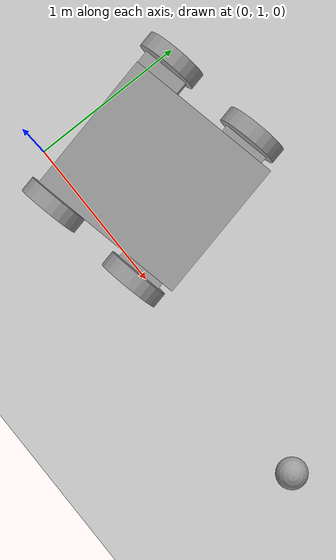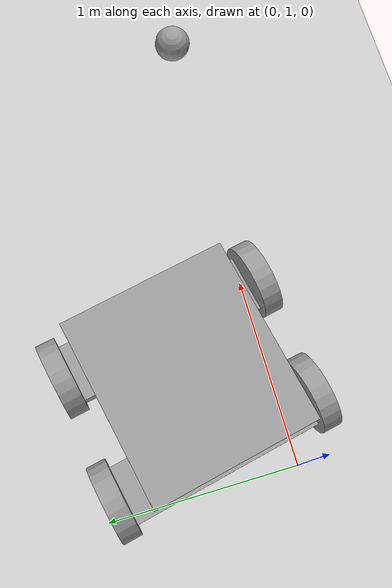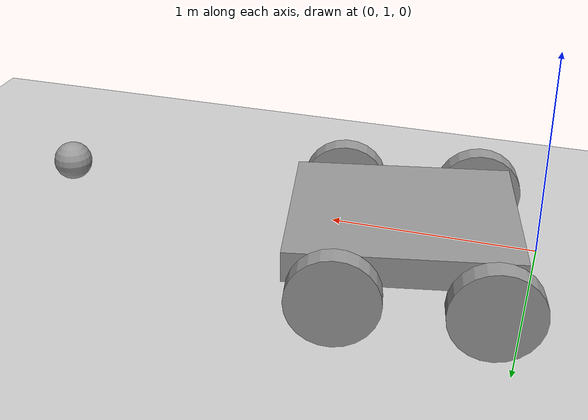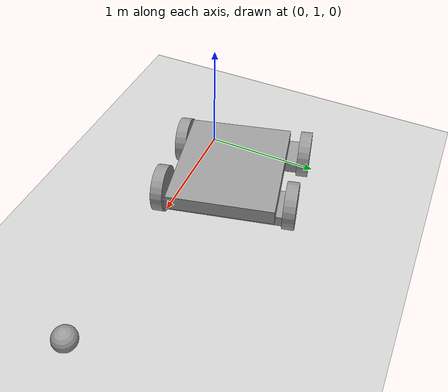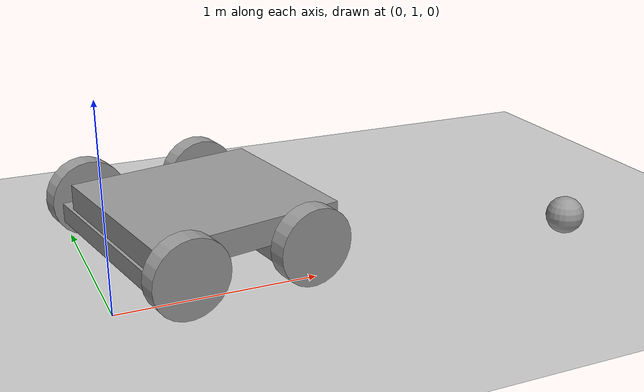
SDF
<sdf version="1.6">
 <world name="default">
  <model name="ground_plane">
   <static>1</static>
   <link name="link">
    <collision name="collision">
     <geometry><plane><normal>0 0 1</normal><size>100 100</size></plane></geometry>
     <surface><friction><ode><mu>100</mu><mu2>50</mu2></ode></friction></surface>
    </collision>
    <visual name="visual">
     <cast_shadows>0</cast_shadows>
     <geometry><plane><normal>0 0 1</normal><size>100 100</size></plane></geometry>
     <material>
      <script><uri>file://media/materials/scripts/gazebo.material</uri><name>Gazebo/Grey</name></script>
     </material>
    </visual>
   </link>
  </model>
  <model name="car2_0">
   <link name="link_0">
    <pose>-0.029646 0.017279 0.209143 0 -0 0</pose>
    <inertial>
     <mass>0.122646</mass>
     <inertia>
      <ixx>0.00845846</ixx>
      <ixy>0</ixy>
      <ixz>0</ixz>
      <iyy>0.0104105</iyy>
      <iyz>0</iyz>
      <izz>0.0184889</izz>
     </inertia>
    </inertial>
    <visual name="visual">
     <geometry><box><size>1 0.899449 0.136358</size></box></geometry>
     <material>
      <lighting>1</lighting>
      <script><uri>file://media/materials/scripts/gazebo.material</uri><name>Gazebo/Grey</name></script>
      <shader type="pixel"/>
      <ambient>0.3 0.3 0.3 1</ambient>
      <diffuse>0.7 0.7 0.7 1</diffuse>
      <specular>0.01 0.01 0.01 1</specular>
      <emissive>0 0 0 1</emissive>
     </material>
    </visual>
    <collision name="collision">
     <geometry><box><size>1 0.899449 0.136358</size></box></geometry>
     <surface>
      <friction>
       <ode><mu>1</mu><mu2>1</mu2><fdir1>0 0 0</fdir1><slip1>0</slip1><slip2>0</slip2></ode>
       <torsional>
        <coefficient>1</coefficient>
        <patch_radius>0</patch_radius>
        <surface_radius>0</surface_radius>
        <use_patch_radius>1</use_patch_radius>
        <ode><slip>0</slip></ode>
       </torsional>
      </friction>
      <bounce><restitution_coefficient>0</restitution_coefficient><threshold>1e+06</threshold></bounce>
      <contact>
       <collide_without_contact>0</collide_without_contact>
       <collide_without_contact_bitmask>1</collide_without_contact_bitmask>
       <collide_bitmask>1</collide_bitmask>
       <ode>
        <soft_cfm>0</soft_cfm>
        <soft_erp>0.2</soft_erp>
        <kp>1e+13</kp>
        <kd>1</kd>
        <max_vel>0.01</max_vel>
        <min_depth>0</min_depth>
       </ode>
       <bullet>
        <split_impulse>1</split_impulse>
        <split_impulse_penetration_threshold>-0.01</split_impulse_penetration_threshold>
        <soft_cfm>0</soft_cfm>
        <soft_erp>0.2</soft_erp>
        <kp>1e+13</kp>
        <kd>1</kd>
       </bullet>
      </contact>
     </surface>
    </collision>
   </link>
   <model name="robot">
    <link name="link_0">
     <pose>0 0 0.2 0 -0 0</pose>
     <inertial>
      <mass>1</mass>
      <inertia>
       <ixx>0.166667</ixx>
       <ixy>0</ixy>
       <ixz>0</ixz>
       <iyy>0.166667</iyy>
       <iyz>0</iyz>
       <izz>0.166667</izz>
      </inertia>
     </inertial>
     <visual name="visual">
      <geometry><box><size>0.3 1 0.1</size></box></geometry>
      <material>
       <lighting>1</lighting>
       <script><uri>file://media/materials/scripts/gazebo.material</uri><name>Gazebo/Grey</name></script>
       <shader type="pixel"><normal_map>__default__</normal_map></shader>
       <ambient>0.3 0.3 0.3 1</ambient>
       <diffuse>0.7 0.7 0.7 1</diffuse>
       <specular>0.01 0.01 0.01 1</specular>
       <emissive>0 0 0 1</emissive>
      </material>
     </visual>
     <collision name="collision">
      <geometry><box><size>0.3 1 0.1</size></box></geometry>
      <surface>
       <friction>
        <ode><mu>1</mu><mu2>1</mu2><fdir1>0 0 0</fdir1><slip1>0</slip1><slip2>0</slip2></ode>
        <torsional>
         <coefficient>1</coefficient>
         <patch_radius>0</patch_radius>
         <surface_radius>0</surface_radius>
         <use_patch_radius>1</use_patch_radius>
         <ode><slip>0</slip></ode>
        </torsional>
       </friction>
       <bounce><restitution_coefficient>0</restitution_coefficient><threshold>1e+06</threshold></bounce>
       <contact>
        <collide_without_contact>0</collide_without_contact>
        <collide_without_contact_bitmask>1</collide_without_contact_bitmask>
        <collide_bitmask>1</collide_bitmask>
        <ode>
         <soft_cfm>0</soft_cfm>
         <soft_erp>0.2</soft_erp>
         <kp>1e+13</kp>
         <kd>1</kd>
         <max_vel>0.01</max_vel>
         <min_depth>0</min_depth>
        </ode>
        <bullet>
         <split_impulse>1</split_impulse>
         <split_impulse_penetration_threshold>-0.01</split_impulse_penetration_threshold>
         <soft_cfm>0</soft_cfm>
         <soft_erp>0.2</soft_erp>
         <kp>1e+13</kp>
         <kd>1</kd>
        </bullet>
       </contact>
      </surface>
     </collision>
    </link>
    <link name="link_1">
     <pose>0 -0.550019 0.244996 1.5707 -0 0</pose>
     <inertial>
      <mass>1</mass>
      <inertia><ixx>0.145833</ixx><ixy>0</ixy><ixz>0</ixz><iyy>0.145833</iyy><iyz>0</iyz><izz>0.125</izz></inertia>
     </inertial>
     <visual name="visual">
      <geometry><cylinder><radius>0.2</radius><length>0.1</length></cylinder></geometry>
      <material>
       <lighting>1</lighting>
       <script><uri>file://media/materials/scripts/gazebo.material</uri><name>Gazebo/Grey</name></script>
       <shader type="pixel"><normal_map>__default__</normal_map></shader>
       <ambient>0.3 0.3 0.3 1</ambient>
       <diffuse>0.7 0.7 0.7 1</diffuse>
       <specular>0.01 0.01 0.01 1</specular>
       <emissive>0 0 0 1</emissive>
      </material>
     </visual>
     <collision name="collision">
      <geometry><cylinder><radius>0.2</radius><length>0.1</length></cylinder></geometry>
      <surface>
       <friction>
        <ode><mu>1</mu><mu2>1</mu2><fdir1>0 0 0</fdir1><slip1>0</slip1><slip2>0</slip2></ode>
        <torsional>
         <coefficient>1</coefficient>
         <patch_radius>0</patch_radius>
         <surface_radius>0</surface_radius>
         <use_patch_radius>1</use_patch_radius>
         <ode><slip>0</slip></ode>
        </torsional>
       </friction>
       <bounce><restitution_coefficient>0</restitution_coefficient><threshold>1e+06</threshold></bounce>
       <contact>
        <collide_without_contact>0</collide_without_contact>
        <collide_without_contact_bitmask>1</collide_without_contact_bitmask>
        <collide_bitmask>1</collide_bitmask>
        <ode>
         <soft_cfm>0</soft_cfm>
         <soft_erp>0.2</soft_erp>
         <kp>1e+13</kp>
         <kd>1</kd>
         <max_vel>0.01</max_vel>
         <min_depth>0</min_depth>
        </ode>
        <bullet>
         <split_impulse>1</split_impulse>
         <split_impulse_penetration_threshold>-0.01</split_impulse_penetration_threshold>
         <soft_cfm>0</soft_cfm>
         <soft_erp>0.2</soft_erp>
         <kp>1e+13</kp>
         <kd>1</kd>
        </bullet>
       </contact>
      </surface>
     </collision>
    </link>
    <link name="link_1_clone">
     <pose>0 0.550019 0.245 1.5707 -0 0</pose>
     <inertial>
      <mass>1</mass>
      <inertia><ixx>0.145833</ixx><ixy>0</ixy><ixz>0</ixz><iyy>0.145833</iyy><iyz>0</iyz><izz>0.125</izz></inertia>
     </inertial>
     <visual name="visual">
      <geometry><cylinder><radius>0.2</radius><length>0.1</length></cylinder></geometry>
      <material>
       <lighting>1</lighting>
       <script><uri>file://media/materials/scripts/gazebo.material</uri><name>Gazebo/Grey</name></script>
       <shader type="pixel"><normal_map>__default__</normal_map></shader>
       <ambient>0.3 0.3 0.3 1</ambient>
       <diffuse>0.7 0.7 0.7 1</diffuse>
       <specular>0.01 0.01 0.01 1</specular>
       <emissive>0 0 0 1</emissive>
      </material>
     </visual>
     <collision name="collision">
      <geometry><cylinder><radius>0.2</radius><length>0.1</length></cylinder></geometry>
      <surface>
       <friction>
        <ode><mu>1</mu><mu2>1</mu2><fdir1>0 0 0</fdir1><slip1>0</slip1><slip2>0</slip2></ode>
        <torsional>
         <coefficient>1</coefficient>
         <patch_radius>0</patch_radius>
         <surface_radius>0</surface_radius>
         <use_patch_radius>1</use_patch_radius>
         <ode><slip>0</slip></ode>
        </torsional>
       </friction>
       <bounce><restitution_coefficient>0</restitution_coefficient><threshold>1e+06</threshold></bounce>
       <contact>
        <collide_without_contact>0</collide_without_contact>
        <collide_without_contact_bitmask>1</collide_without_contact_bitmask>
        <collide_bitmask>1</collide_bitmask>
        <ode>
         <soft_cfm>0</soft_cfm>
         <soft_erp>0.2</soft_erp>
         <kp>1e+13</kp>
         <kd>1</kd>
         <max_vel>0.01</max_vel>
         <min_depth>0</min_depth>
        </ode>
        <bullet>
         <split_impulse>1</split_impulse>
         <split_impulse_penetration_threshold>-0.01</split_impulse_penetration_threshold>
         <soft_cfm>0</soft_cfm>
         <soft_erp>0.2</soft_erp>
         <kp>1e+13</kp>
         <kd>1</kd>
        </bullet>
       </contact>
      </surface>
     </collision>
    </link>
    <joint name="link_0_JOINT_0" type="revolute">
     <parent>link_0</parent>
     <child>link_1</child>
     <axis>
      <xyz>0 0 1</xyz>
      <use_parent_model_frame>0</use_parent_model_frame>
      <limit>
       <lower>-1.79769e+308</lower>
       <upper>1.79769e+308</upper>
       <effort>-1</effort>
       <velocity>-1</velocity>
      </limit>
      <dynamics>
       <spring_reference>0</spring_reference>
       <spring_stiffness>0</spring_stiffness>
       <damping>0</damping>
      </dynamics>
     </axis>
     <physics>
      <ode><limit><cfm>0</cfm><erp>0.2</erp></limit><suspension><cfm>0</cfm><erp>0.2</erp></suspension></ode>
     </physics>
    </joint>
    <joint name="link_0_JOINT_1" type="revolute">
     <parent>link_0</parent>
     <child>link_1_clone</child>
     <axis>
      <xyz>0 0 1</xyz>
      <use_parent_model_frame>0</use_parent_model_frame>
      <limit>
       <lower>-1.79769e+308</lower>
       <upper>1.79769e+308</upper>
       <effort>-1</effort>
       <velocity>-1</velocity>
      </limit>
      <dynamics>
       <spring_reference>0</spring_reference>
       <spring_stiffness>0</spring_stiffness>
       <damping>0</damping>
      </dynamics>
     </axis>
     <physics>
      <ode><limit><cfm>0</cfm><erp>0.2</erp></limit><suspension><cfm>0</cfm><erp>0.2</erp></suspension></ode>
     </physics>
    </joint>
    <static>0</static>
    <pose>-0.307377 0.011304 -0.104571 0 -0 0</pose>
   </model>
   <model name="robot_0">
    <link name="link_0">
     <pose>0 0 0.2 0 -0 0</pose>
     <inertial>
      <mass>1</mass>
      <inertia>
       <ixx>0.166667</ixx>
       <ixy>0</ixy>
       <ixz>0</ixz>
       <iyy>0.166667</iyy>
       <iyz>0</iyz>
       <izz>0.166667</izz>
      </inertia>
     </inertial>
     <visual name="visual">
      <geometry><box><size>0.3 1 0.1</size></box></geometry>
      <material>
       <lighting>1</lighting>
       <script><uri>file://media/materials/scripts/gazebo.material</uri><name>Gazebo/Grey</name></script>
       <shader type="pixel"><normal_map>__default__</normal_map></shader>
       <ambient>0.3 0.3 0.3 1</ambient>
       <diffuse>0.7 0.7 0.7 1</diffuse>
       <specular>0.01 0.01 0.01 1</specular>
       <emissive>0 0 0 1</emissive>
      </material>
     </visual>
     <collision name="collision">
      <geometry><box><size>0.3 1 0.1</size></box></geometry>
      <surface>
       <friction>
        <ode><mu>1</mu><mu2>1</mu2><fdir1>0 0 0</fdir1><slip1>0</slip1><slip2>0</slip2></ode>
        <torsional>
         <coefficient>1</coefficient>
         <patch_radius>0</patch_radius>
         <surface_radius>0</surface_radius>
         <use_patch_radius>1</use_patch_radius>
         <ode><slip>0</slip></ode>
        </torsional>
       </friction>
       <bounce><restitution_coefficient>0</restitution_coefficient><threshold>1e+06</threshold></bounce>
       <contact>
        <collide_without_contact>0</collide_without_contact>
        <collide_without_contact_bitmask>1</collide_without_contact_bitmask>
        <collide_bitmask>1</collide_bitmask>
        <ode>
         <soft_cfm>0</soft_cfm>
         <soft_erp>0.2</soft_erp>
         <kp>1e+13</kp>
         <kd>1</kd>
         <max_vel>0.01</max_vel>
         <min_depth>0</min_depth>
        </ode>
        <bullet>
         <split_impulse>1</split_impulse>
         <split_impulse_penetration_threshold>-0.01</split_impulse_penetration_threshold>
         <soft_cfm>0</soft_cfm>
         <soft_erp>0.2</soft_erp>
         <kp>1e+13</kp>
         <kd>1</kd>
        </bullet>
       </contact>
      </surface>
     </collision>
    </link>
    <link name="link_1">
     <pose>0 -0.550019 0.244996 1.5707 -0 0</pose>
     <inertial>
      <mass>1</mass>
      <inertia><ixx>0.145833</ixx><ixy>0</ixy><ixz>0</ixz><iyy>0.145833</iyy><iyz>0</iyz><izz>0.125</izz></inertia>
     </inertial>
     <visual name="visual">
      <geometry><cylinder><radius>0.2</radius><length>0.1</length></cylinder></geometry>
      <material>
       <lighting>1</lighting>
       <script><uri>file://media/materials/scripts/gazebo.material</uri><name>Gazebo/Grey</name></script>
       <shader type="pixel"><normal_map>__default__</normal_map></shader>
       <ambient>0.3 0.3 0.3 1</ambient>
       <diffuse>0.7 0.7 0.7 1</diffuse>
       <specular>0.01 0.01 0.01 1</specular>
       <emissive>0 0 0 1</emissive>
      </material>
     </visual>
     <collision name="collision">
      <geometry><cylinder><radius>0.2</radius><length>0.1</length></cylinder></geometry>
      <surface>
       <friction>
        <ode><mu>1</mu><mu2>1</mu2><fdir1>0 0 0</fdir1><slip1>0</slip1><slip2>0</slip2></ode>
        <torsional>
         <coefficient>1</coefficient>
         <patch_radius>0</patch_radius>
         <surface_radius>0</surface_radius>
         <use_patch_radius>1</use_patch_radius>
         <ode><slip>0</slip></ode>
        </torsional>
       </friction>
       <bounce><restitution_coefficient>0</restitution_coefficient><threshold>1e+06</threshold></bounce>
       <contact>
        <collide_without_contact>0</collide_without_contact>
        <collide_without_contact_bitmask>1</collide_without_contact_bitmask>
        <collide_bitmask>1</collide_bitmask>
        <ode>
         <soft_cfm>0</soft_cfm>
         <soft_erp>0.2</soft_erp>
         <kp>1e+13</kp>
         <kd>1</kd>
         <max_vel>0.01</max_vel>
         <min_depth>0</min_depth>
        </ode>
        <bullet>
         <split_impulse>1</split_impulse>
         <split_impulse_penetration_threshold>-0.01</split_impulse_penetration_threshold>
         <soft_cfm>0</soft_cfm>
         <soft_erp>0.2</soft_erp>
         <kp>1e+13</kp>
         <kd>1</kd>
        </bullet>
       </contact>
      </surface>
     </collision>
    </link>
    <link name="link_1_clone">
     <pose>0 0.550019 0.245 1.5707 -0 0</pose>
     <inertial>
      <mass>1</mass>
      <inertia><ixx>0.145833</ixx><ixy>0</ixy><ixz>0</ixz><iyy>0.145833</iyy><iyz>0</iyz><izz>0.125</izz></inertia>
     </inertial>
     <visual name="visual">
      <geometry><cylinder><radius>0.2</radius><length>0.1</length></cylinder></geometry>
      <material>
       <lighting>1</lighting>
       <script><uri>file://media/materials/scripts/gazebo.material</uri><name>Gazebo/Grey</name></script>
       <shader type="pixel"><normal_map>__default__</normal_map></shader>
       <ambient>0.3 0.3 0.3 1</ambient>
       <diffuse>0.7 0.7 0.7 1</diffuse>
       <specular>0.01 0.01 0.01 1</specular>
       <emissive>0 0 0 1</emissive>
      </material>
     </visual>
     <collision name="collision">
      <geometry><cylinder><radius>0.2</radius><length>0.1</length></cylinder></geometry>
      <surface>
       <friction>
        <ode><mu>1</mu><mu2>1</mu2><fdir1>0 0 0</fdir1><slip1>0</slip1><slip2>0</slip2></ode>
        <torsional>
         <coefficient>1</coefficient>
         <patch_radius>0</patch_radius>
         <surface_radius>0</surface_radius>
         <use_patch_radius>1</use_patch_radius>
         <ode><slip>0</slip></ode>
        </torsional>
       </friction>
       <bounce><restitution_coefficient>0</restitution_coefficient><threshold>1e+06</threshold></bounce>
       <contact>
        <collide_without_contact>0</collide_without_contact>
        <collide_without_contact_bitmask>1</collide_without_contact_bitmask>
        <collide_bitmask>1</collide_bitmask>
        <ode>
         <soft_cfm>0</soft_cfm>
         <soft_erp>0.2</soft_erp>
         <kp>1e+13</kp>
         <kd>1</kd>
         <max_vel>0.01</max_vel>
         <min_depth>0</min_depth>
        </ode>
        <bullet>
         <split_impulse>1</split_impulse>
         <split_impulse_penetration_threshold>-0.01</split_impulse_penetration_threshold>
         <soft_cfm>0</soft_cfm>
         <soft_erp>0.2</soft_erp>
         <kp>1e+13</kp>
         <kd>1</kd>
        </bullet>
       </contact>
      </surface>
     </collision>
    </link>
    <joint name="link_0_JOINT_0" type="revolute">
     <parent>link_0</parent>
     <child>link_1</child>
     <axis>
      <xyz>0 0 1</xyz>
      <use_parent_model_frame>0</use_parent_model_frame>
      <limit>
       <lower>-1.79769e+308</lower>
       <upper>1.79769e+308</upper>
       <effort>-1</effort>
       <velocity>-1</velocity>
      </limit>
      <dynamics>
       <spring_reference>0</spring_reference>
       <spring_stiffness>0</spring_stiffness>
       <damping>0</damping>
      </dynamics>
     </axis>
     <physics>
      <ode><limit><cfm>0</cfm><erp>0.2</erp></limit><suspension><cfm>0</cfm><erp>0.2</erp></suspension></ode>
     </physics>
    </joint>
    <joint name="link_0_JOINT_1" type="revolute">
     <parent>link_0</parent>
     <child>link_1_clone</child>
     <axis>
      <xyz>0 0 1</xyz>
      <use_parent_model_frame>0</use_parent_model_frame>
      <limit>
       <lower>-1.79769e+308</lower>
       <upper>1.79769e+308</upper>
       <effort>-1</effort>
       <velocity>-1</velocity>
      </limit>
      <dynamics>
       <spring_reference>0</spring_reference>
       <spring_stiffness>0</spring_stiffness>
       <damping>0</damping>
      </dynamics>
     </axis>
     <physics>
      <ode><limit><cfm>0</cfm><erp>0.2</erp></limit><suspension><cfm>0</cfm><erp>0.2</erp></suspension></ode>
     </physics>
    </joint>
    <static>0</static>
    <pose>0.337023 -0.028583 -0.104571 0 -0 0</pose>
   </model>
   <joint name="link_0_JOINT_0" type="fixed">
    <parent>link_0</parent>
    <child>robot_0::link_0</child>
    <physics>
     <ode><limit><cfm>0</cfm><erp>0.2</erp></limit><suspension><cfm>0</cfm><erp>0.2</erp></suspension></ode>
    </physics>
   </joint>
   <joint name="link_0_JOINT_1" type="revolute">
    <parent>link_0</parent>
    <child>robot::link_1_clone</child>
    <axis>
     <xyz>1 0 0</xyz>
     <use_parent_model_frame>0</use_parent_model_frame>
     <limit>
      <lower>-1.79769e+308</lower>
      <upper>1.79769e+308</upper>
      <effort>-1</effort>
      <velocity>-1</velocity>
     </limit>
     <dynamics>
      <spring_reference>0</spring_reference>
      <spring_stiffness>0</spring_stiffness>
      <damping>0</damping>
     </dynamics>
    </axis>
    <physics>
     <ode><limit><cfm>0</cfm><erp>0.2</erp></limit><suspension><cfm>0</cfm><erp>0.2</erp></suspension></ode>
    </physics>
   </joint>
   <static>0</static>
   <pose>0.536782 1.43634 0.0816 -0.037456 0.002021 -2.93331</pose>
  </model>
  <model name="my_ball">
   <link name="link_0">
    <inertial>
     <mass>1</mass>
     <inertia><ixx>0.1</ixx><ixy>0</ixy><ixz>0</ixz><iyy>0.1</iyy><iyz>0</iyz><izz>0.1</izz></inertia>
    </inertial>
    <visual name="visual">
     <geometry><sphere><radius>0.1</radius></sphere></geometry>
     <material>
      <lighting>1</lighting>
      <script><uri>file://media/materials/scripts/gazebo.material</uri><name>Gazebo/Grey</name></script>
      <shader type="pixel"><normal_map>__default__</normal_map></shader>
      <ambient>1 1 1 1</ambient>
      <diffuse>1 1 1 1</diffuse>
      <specular>1 1 1 1</specular>
      <emissive>1 1 1 1</emissive>
     </material>
    </visual>
    <collision name="collision">
     <geometry><sphere><radius>0.1</radius></sphere></geometry>
     <surface>
      <friction>
       <ode><mu>1</mu><mu2>1</mu2><fdir1>0 0 0</fdir1><slip1>0</slip1><slip2>0</slip2></ode>
       <torsional>
        <coefficient>1</coefficient>
        <patch_radius>0</patch_radius>
        <surface_radius>0</surface_radius>
        <use_patch_radius>1</use_patch_radius>
        <ode><slip>0</slip></ode>
       </torsional>
      </friction>
      <bounce><restitution_coefficient>0</restitution_coefficient><threshold>1e+06</threshold></bounce>
      <contact>
       <collide_without_contact>0</collide_without_contact>
       <collide_without_contact_bitmask>1</collide_without_contact_bitmask>
       <collide_bitmask>1</collide_bitmask>
       <ode>
        <soft_cfm>0</soft_cfm>
        <soft_erp>0.2</soft_erp>
        <kp>1e+13</kp>
        <kd>1</kd>
        <max_vel>0.01</max_vel>
        <min_depth>0</min_depth>
       </ode>
       <bullet>
        <split_impulse>1</split_impulse>
        <split_impulse_penetration_threshold>-0.01</split_impulse_penetration_threshold>
        <soft_cfm>0</soft_cfm>
        <soft_erp>0.2</soft_erp>
        <kp>1e+13</kp>
        <kd>1</kd>
       </bullet>
      </contact>
     </surface>
    </collision>
   </link>
   <static>0</static>
   <pose>2.45127 0.959944 0.1 0 -0 0</pose>
  </model>
 </world>
</sdf>
